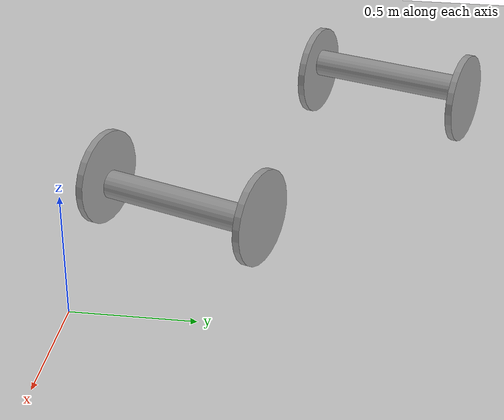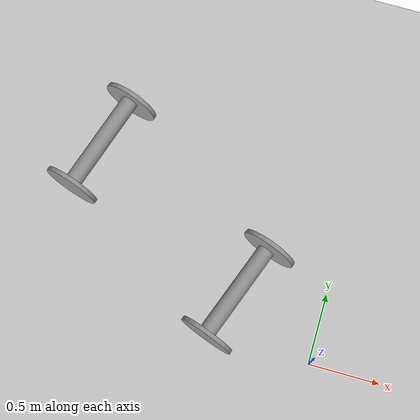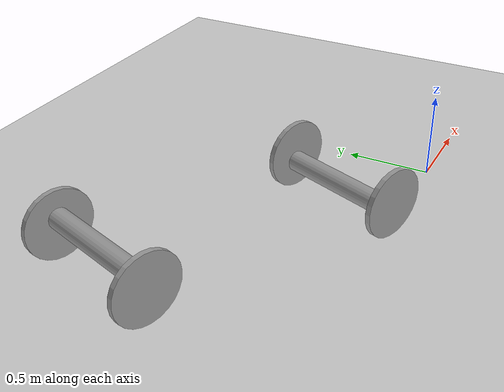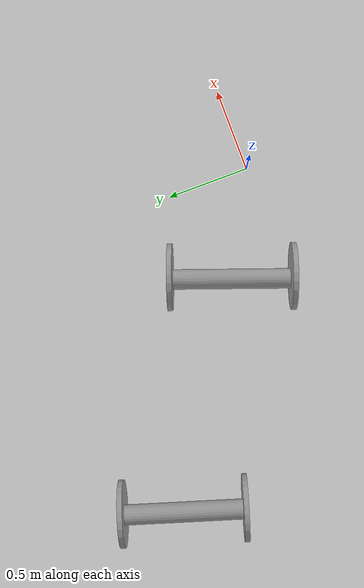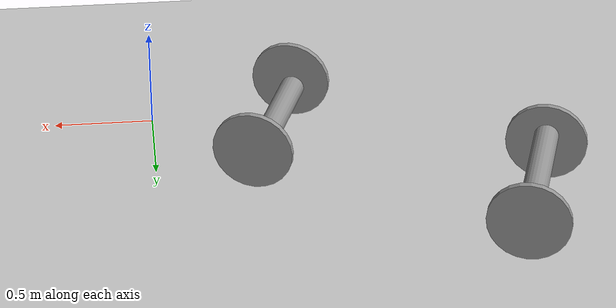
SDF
<sdf version="1.6">
 <world name="default">
  <model name="ground_plane">
   <static>1</static>
   <link name="link">
    <collision name="collision">
     <geometry><plane><normal>0 0 1</normal><size>100 100</size></plane></geometry>
     <surface>
      <contact><collide_bitmask>65535</collide_bitmask></contact>
      <friction><ode><mu>100</mu><mu2>50</mu2></ode></friction>
     </surface>
    </collision>
    <visual name="visual">
     <cast_shadows>0</cast_shadows>
     <geometry><plane><normal>0 0 1</normal><size>100 100</size></plane></geometry>
     <material>
      <script><uri>file://media/materials/scripts/gazebo.material</uri><name>Gazebo/Grey</name></script>
     </material>
    </visual>
   </link>
  </model>
  <model name="car99">
   <link name="link_1">
    <inertial>
     <mass>1</mass>
     <inertia><ixx>0.145833</ixx><ixy>0</ixy><ixz>0</ixz><iyy>0.145833</iyy><iyz>0</iyz><izz>0.125</izz></inertia>
    </inertial>
    <pose>0.013333 -0.365001 0 1.5708 -0 0</pose>
    <visual name="visual">
     <geometry><cylinder><radius>0.2</radius><length>0.03</length></cylinder></geometry>
     <material>
      <lighting>1</lighting>
      <script><uri>file://media/materials/scripts/gazebo.material</uri><name>Gazebo/Grey</name></script>
      <shader type="pixel"><normal_map>__default__</normal_map></shader>
      <ambient>0.3 0.3 0.3 1</ambient>
      <diffuse>0.7 0.7 0.7 1</diffuse>
      <specular>0.01 0.01 0.01 1</specular>
      <emissive>0 0 0 1</emissive>
     </material>
    </visual>
    <collision name="collision">
     <geometry><cylinder><radius>0.2</radius><length>0.03</length></cylinder></geometry>
     <surface>
      <friction>
       <ode><mu>1</mu><mu2>1</mu2><fdir1>0 0 0</fdir1><slip1>0</slip1><slip2>0</slip2></ode>
       <torsional>
        <coefficient>1</coefficient>
        <patch_radius>0</patch_radius>
        <surface_radius>0</surface_radius>
        <use_patch_radius>1</use_patch_radius>
        <ode><slip>0</slip></ode>
       </torsional>
      </friction>
      <bounce><restitution_coefficient>0</restitution_coefficient><threshold>1e+06</threshold></bounce>
      <contact>
       <collide_without_contact>0</collide_without_contact>
       <collide_without_contact_bitmask>1</collide_without_contact_bitmask>
       <collide_bitmask>1</collide_bitmask>
       <ode>
        <soft_cfm>0</soft_cfm>
        <soft_erp>0.2</soft_erp>
        <kp>1e+13</kp>
        <kd>1</kd>
        <max_vel>0.01</max_vel>
        <min_depth>0</min_depth>
       </ode>
       <bullet>
        <split_impulse>1</split_impulse>
        <split_impulse_penetration_threshold>-0.01</split_impulse_penetration_threshold>
        <soft_cfm>0</soft_cfm>
        <soft_erp>0.2</soft_erp>
        <kp>1e+13</kp>
        <kd>1</kd>
       </bullet>
      </contact>
     </surface>
    </collision>
   </link>
   <link name="link_1_clone">
    <inertial>
     <mass>1</mass>
     <inertia><ixx>0.145833</ixx><ixy>0</ixy><ixz>0</ixz><iyy>0.145833</iyy><iyz>0</iyz><izz>0.125</izz></inertia>
    </inertial>
    <pose>0.013333 0.365001 0 1.5708 -0 0</pose>
    <visual name="visual">
     <geometry><cylinder><radius>0.2</radius><length>0.03</length></cylinder></geometry>
     <material>
      <lighting>1</lighting>
      <script><uri>file://media/materials/scripts/gazebo.material</uri><name>Gazebo/Grey</name></script>
      <shader type="pixel"><normal_map>__default__</normal_map></shader>
      <ambient>0.3 0.3 0.3 1</ambient>
      <diffuse>0.7 0.7 0.7 1</diffuse>
      <specular>0.01 0.01 0.01 1</specular>
      <emissive>0 0 0 1</emissive>
     </material>
    </visual>
    <collision name="collision">
     <geometry><cylinder><radius>0.2</radius><length>0.03</length></cylinder></geometry>
     <surface>
      <friction>
       <ode><mu>1</mu><mu2>1</mu2><fdir1>0 0 0</fdir1><slip1>0</slip1><slip2>0</slip2></ode>
       <torsional>
        <coefficient>1</coefficient>
        <patch_radius>0</patch_radius>
        <surface_radius>0</surface_radius>
        <use_patch_radius>1</use_patch_radius>
        <ode><slip>0</slip></ode>
       </torsional>
      </friction>
      <bounce><restitution_coefficient>0</restitution_coefficient><threshold>1e+06</threshold></bounce>
      <contact>
       <collide_without_contact>0</collide_without_contact>
       <collide_without_contact_bitmask>1</collide_without_contact_bitmask>
       <collide_bitmask>1</collide_bitmask>
       <ode>
        <soft_cfm>0</soft_cfm>
        <soft_erp>0.2</soft_erp>
        <kp>1e+13</kp>
        <kd>1</kd>
        <max_vel>0.01</max_vel>
        <min_depth>0</min_depth>
       </ode>
       <bullet>
        <split_impulse>1</split_impulse>
        <split_impulse_penetration_threshold>-0.01</split_impulse_penetration_threshold>
        <soft_cfm>0</soft_cfm>
        <soft_erp>0.2</soft_erp>
        <kp>1e+13</kp>
        <kd>1</kd>
       </bullet>
      </contact>
     </surface>
    </collision>
   </link>
   <link name="link_2">
    <inertial>
     <mass>1</mass>
     <inertia><ixx>0.145833</ixx><ixy>0</ixy><ixz>0</ixz><iyy>0.145833</iyy><iyz>0</iyz><izz>0.125</izz></inertia>
     <pose>0 0 0.2 0 -0 0</pose>
    </inertial>
    <pose>-0.026667 -0 0 1.5708 -0 0</pose>
    <visual name="visual">
     <geometry><cylinder><radius>0.06</radius><length>0.7</length></cylinder></geometry>
     <material>
      <lighting>1</lighting>
      <script><uri>file://media/materials/scripts/gazebo.material</uri><name>Gazebo/Grey</name></script>
      <shader type="pixel"><normal_map>__default__</normal_map></shader>
      <ambient>0.3 0.3 0.3 1</ambient>
      <diffuse>0.7 0.7 0.7 1</diffuse>
      <specular>0.01 0.01 0.01 1</specular>
      <emissive>0 0 0 1</emissive>
     </material>
    </visual>
    <collision name="collision">
     <geometry><cylinder><radius>0.06</radius><length>0.7</length></cylinder></geometry>
     <surface>
      <friction>
       <ode><mu>1</mu><mu2>1</mu2><fdir1>0 0 0</fdir1><slip1>0</slip1><slip2>0</slip2></ode>
       <torsional>
        <coefficient>1</coefficient>
        <patch_radius>0</patch_radius>
        <surface_radius>0</surface_radius>
        <use_patch_radius>1</use_patch_radius>
        <ode><slip>0</slip></ode>
       </torsional>
      </friction>
      <bounce><restitution_coefficient>0</restitution_coefficient><threshold>1e+06</threshold></bounce>
      <contact>
       <collide_without_contact>0</collide_without_contact>
       <collide_without_contact_bitmask>1</collide_without_contact_bitmask>
       <collide_bitmask>1</collide_bitmask>
       <ode>
        <soft_cfm>0</soft_cfm>
        <soft_erp>0.2</soft_erp>
        <kp>1e+13</kp>
        <kd>1</kd>
        <max_vel>0.01</max_vel>
        <min_depth>0</min_depth>
       </ode>
       <bullet>
        <split_impulse>1</split_impulse>
        <split_impulse_penetration_threshold>-0.01</split_impulse_penetration_threshold>
        <soft_cfm>0</soft_cfm>
        <soft_erp>0.2</soft_erp>
        <kp>1e+13</kp>
        <kd>1</kd>
       </bullet>
      </contact>
     </surface>
    </collision>
   </link>
   <joint name="link_2_JOINT_0" type="revolute">
    <parent>link_2</parent>
    <child>link_1</child>
    <axis>
     <xyz>0 0 1</xyz>
     <limit>
      <lower>-1.79769e+308</lower>
      <upper>1.79769e+308</upper>
      <effort>-1</effort>
      <velocity>-1</velocity>
     </limit>
     <dynamics>
      <spring_reference>0</spring_reference>
      <spring_stiffness>0</spring_stiffness>
      <damping>0</damping>
     </dynamics>
     <use_parent_model_frame>0</use_parent_model_frame>
    </axis>
    <physics>
     <ode><limit><cfm>0</cfm><erp>0.2</erp></limit><suspension><cfm>0</cfm><erp>0.2</erp></suspension></ode>
    </physics>
   </joint>
   <joint name="link_2_JOINT_1" type="revolute">
    <parent>link_2</parent>
    <child>link_1_clone</child>
    <axis>
     <xyz>0 0 1</xyz>
     <limit>
      <lower>-1.79769e+308</lower>
      <upper>1.79769e+308</upper>
      <effort>-1</effort>
      <velocity>-1</velocity>
     </limit>
     <dynamics>
      <spring_reference>0</spring_reference>
      <spring_stiffness>0</spring_stiffness>
      <damping>0</damping>
     </dynamics>
     <use_parent_model_frame>0</use_parent_model_frame>
    </axis>
    <physics>
     <ode><limit><cfm>0</cfm><erp>0.2</erp></limit><suspension><cfm>0</cfm><erp>0.2</erp></suspension></ode>
    </physics>
   </joint>
   <static>0</static>
   <pose>-0.599058 0.325094 0.187318 3.14158 -1.2574 -0.348172</pose>
  </model>
  <model name="car99_0">
   <link name="link_1">
    <inertial>
     <mass>1</mass>
     <inertia><ixx>0.145833</ixx><ixy>0</ixy><ixz>0</ixz><iyy>0.145833</iyy><iyz>0</iyz><izz>0.125</izz></inertia>
    </inertial>
    <pose>0.013333 -0.365001 0 1.5708 -0 0</pose>
    <visual name="visual">
     <geometry><cylinder><radius>0.2</radius><length>0.03</length></cylinder></geometry>
     <material>
      <lighting>1</lighting>
      <script><uri>file://media/materials/scripts/gazebo.material</uri><name>Gazebo/Grey</name></script>
      <shader type="pixel"><normal_map>__default__</normal_map></shader>
      <ambient>0.3 0.3 0.3 1</ambient>
      <diffuse>0.7 0.7 0.7 1</diffuse>
      <specular>0.01 0.01 0.01 1</specular>
      <emissive>0 0 0 1</emissive>
     </material>
    </visual>
    <collision name="collision">
     <geometry><cylinder><radius>0.2</radius><length>0.03</length></cylinder></geometry>
     <surface>
      <friction>
       <ode><mu>1</mu><mu2>1</mu2><fdir1>0 0 0</fdir1><slip1>0</slip1><slip2>0</slip2></ode>
       <torsional>
        <coefficient>1</coefficient>
        <patch_radius>0</patch_radius>
        <surface_radius>0</surface_radius>
        <use_patch_radius>1</use_patch_radius>
        <ode><slip>0</slip></ode>
       </torsional>
      </friction>
      <bounce><restitution_coefficient>0</restitution_coefficient><threshold>1e+06</threshold></bounce>
      <contact>
       <collide_without_contact>0</collide_without_contact>
       <collide_without_contact_bitmask>1</collide_without_contact_bitmask>
       <collide_bitmask>1</collide_bitmask>
       <ode>
        <soft_cfm>0</soft_cfm>
        <soft_erp>0.2</soft_erp>
        <kp>1e+13</kp>
        <kd>1</kd>
        <max_vel>0.01</max_vel>
        <min_depth>0</min_depth>
       </ode>
       <bullet>
        <split_impulse>1</split_impulse>
        <split_impulse_penetration_threshold>-0.01</split_impulse_penetration_threshold>
        <soft_cfm>0</soft_cfm>
        <soft_erp>0.2</soft_erp>
        <kp>1e+13</kp>
        <kd>1</kd>
       </bullet>
      </contact>
     </surface>
    </collision>
   </link>
   <link name="link_1_clone">
    <inertial>
     <mass>1</mass>
     <inertia><ixx>0.145833</ixx><ixy>0</ixy><ixz>0</ixz><iyy>0.145833</iyy><iyz>0</iyz><izz>0.125</izz></inertia>
    </inertial>
    <pose>0.013333 0.365001 0 1.5708 -0 0</pose>
    <visual name="visual">
     <geometry><cylinder><radius>0.2</radius><length>0.03</length></cylinder></geometry>
     <material>
      <lighting>1</lighting>
      <script><uri>file://media/materials/scripts/gazebo.material</uri><name>Gazebo/Grey</name></script>
      <shader type="pixel"><normal_map>__default__</normal_map></shader>
      <ambient>0.3 0.3 0.3 1</ambient>
      <diffuse>0.7 0.7 0.7 1</diffuse>
      <specular>0.01 0.01 0.01 1</specular>
      <emissive>0 0 0 1</emissive>
     </material>
    </visual>
    <collision name="collision">
     <geometry><cylinder><radius>0.2</radius><length>0.03</length></cylinder></geometry>
     <surface>
      <friction>
       <ode><mu>1</mu><mu2>1</mu2><fdir1>0 0 0</fdir1><slip1>0</slip1><slip2>0</slip2></ode>
       <torsional>
        <coefficient>1</coefficient>
        <patch_radius>0</patch_radius>
        <surface_radius>0</surface_radius>
        <use_patch_radius>1</use_patch_radius>
        <ode><slip>0</slip></ode>
       </torsional>
      </friction>
      <bounce><restitution_coefficient>0</restitution_coefficient><threshold>1e+06</threshold></bounce>
      <contact>
       <collide_without_contact>0</collide_without_contact>
       <collide_without_contact_bitmask>1</collide_without_contact_bitmask>
       <collide_bitmask>1</collide_bitmask>
       <ode>
        <soft_cfm>0</soft_cfm>
        <soft_erp>0.2</soft_erp>
        <kp>1e+13</kp>
        <kd>1</kd>
        <max_vel>0.01</max_vel>
        <min_depth>0</min_depth>
       </ode>
       <bullet>
        <split_impulse>1</split_impulse>
        <split_impulse_penetration_threshold>-0.01</split_impulse_penetration_threshold>
        <soft_cfm>0</soft_cfm>
        <soft_erp>0.2</soft_erp>
        <kp>1e+13</kp>
        <kd>1</kd>
       </bullet>
      </contact>
     </surface>
    </collision>
   </link>
   <link name="link_2">
    <inertial>
     <mass>1</mass>
     <inertia><ixx>0.145833</ixx><ixy>0</ixy><ixz>0</ixz><iyy>0.145833</iyy><iyz>0</iyz><izz>0.125</izz></inertia>
     <pose>0 0 0.2 0 -0 0</pose>
    </inertial>
    <pose>-0.026667 -0 0 1.5708 -0 0</pose>
    <visual name="visual">
     <geometry><cylinder><radius>0.06</radius><length>0.7</length></cylinder></geometry>
     <material>
      <lighting>1</lighting>
      <script><uri>file://media/materials/scripts/gazebo.material</uri><name>Gazebo/Grey</name></script>
      <shader type="pixel"><normal_map>__default__</normal_map></shader>
      <ambient>0.3 0.3 0.3 1</ambient>
      <diffuse>0.7 0.7 0.7 1</diffuse>
      <specular>0.01 0.01 0.01 1</specular>
      <emissive>0 0 0 1</emissive>
     </material>
    </visual>
    <collision name="collision">
     <geometry><cylinder><radius>0.06</radius><length>0.7</length></cylinder></geometry>
     <surface>
      <friction>
       <ode><mu>1</mu><mu2>1</mu2><fdir1>0 0 0</fdir1><slip1>0</slip1><slip2>0</slip2></ode>
       <torsional>
        <coefficient>1</coefficient>
        <patch_radius>0</patch_radius>
        <surface_radius>0</surface_radius>
        <use_patch_radius>1</use_patch_radius>
        <ode><slip>0</slip></ode>
       </torsional>
      </friction>
      <bounce><restitution_coefficient>0</restitution_coefficient><threshold>1e+06</threshold></bounce>
      <contact>
       <collide_without_contact>0</collide_without_contact>
       <collide_without_contact_bitmask>1</collide_without_contact_bitmask>
       <collide_bitmask>1</collide_bitmask>
       <ode>
        <soft_cfm>0</soft_cfm>
        <soft_erp>0.2</soft_erp>
        <kp>1e+13</kp>
        <kd>1</kd>
        <max_vel>0.01</max_vel>
        <min_depth>0</min_depth>
       </ode>
       <bullet>
        <split_impulse>1</split_impulse>
        <split_impulse_penetration_threshold>-0.01</split_impulse_penetration_threshold>
        <soft_cfm>0</soft_cfm>
        <soft_erp>0.2</soft_erp>
        <kp>1e+13</kp>
        <kd>1</kd>
       </bullet>
      </contact>
     </surface>
    </collision>
   </link>
   <joint name="link_2_JOINT_0" type="revolute">
    <parent>link_2</parent>
    <child>link_1</child>
    <axis>
     <xyz>0 0 1</xyz>
     <limit>
      <lower>-1.79769e+308</lower>
      <upper>1.79769e+308</upper>
      <effort>-1</effort>
      <velocity>-1</velocity>
     </limit>
     <dynamics>
      <spring_reference>0</spring_reference>
      <spring_stiffness>0</spring_stiffness>
      <damping>0</damping>
     </dynamics>
     <use_parent_model_frame>0</use_parent_model_frame>
    </axis>
    <physics>
     <ode><limit><cfm>0</cfm><erp>0.2</erp></limit><suspension><cfm>0</cfm><erp>0.2</erp></suspension></ode>
    </physics>
   </joint>
   <joint name="link_2_JOINT_1" type="revolute">
    <parent>link_2</parent>
    <child>link_1_clone</child>
    <axis>
     <xyz>0 0 1</xyz>
     <limit>
      <lower>-1.79769e+308</lower>
      <upper>1.79769e+308</upper>
      <effort>-1</effort>
      <velocity>-1</velocity>
     </limit>
     <dynamics>
      <spring_reference>0</spring_reference>
      <spring_stiffness>0</spring_stiffness>
      <damping>0</damping>
     </dynamics>
     <use_parent_model_frame>0</use_parent_model_frame>
    </axis>
    <physics>
     <ode><limit><cfm>0</cfm><erp>0.2</erp></limit><suspension><cfm>0</cfm><erp>0.2</erp></suspension></ode>
    </physics>
   </joint>
   <static>0</static>
   <pose>-1.79488 1.07502 0.213334 0.000461 1.5636 2.83507</pose>
  </model>
 </world>
</sdf>
